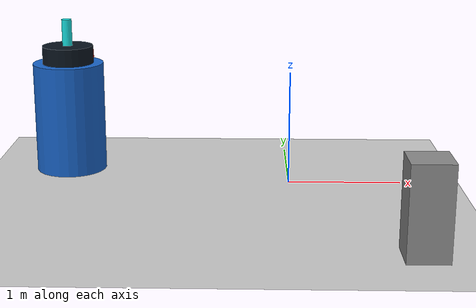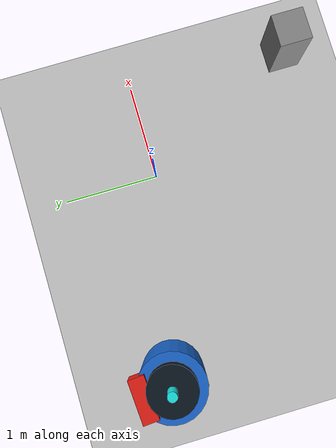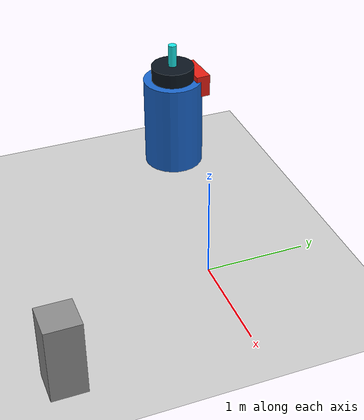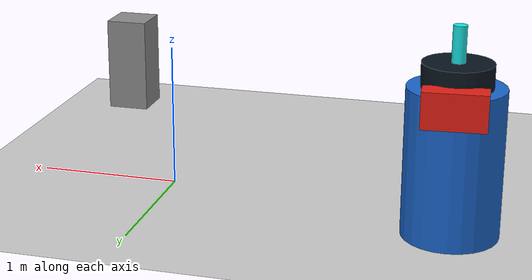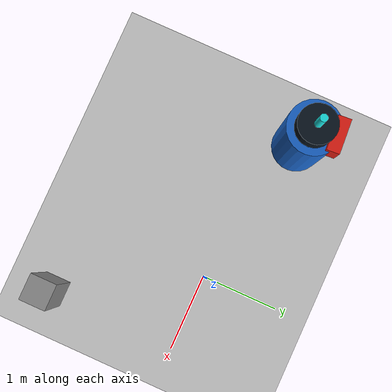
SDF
<sdf version="1.7">
 <world name="default">
  <plugin name="socnav_plugin" filename="libSocNavPlugin.so">
   <robot_name>robot</robot_name>
   <trajectory_file>/home/hunav_gz_classic_ws/SocNav3_trajectories/src6/000003928.json</trajectory_file>
   <human_slots>3</human_slots>
   <goal_angle_mesh>
    <angle_threshold>0.515878295898</angle_threshold>
    <uri>/home/hunav_gz_classic_ws/src/socnav_gazebo_reproducer/meshes/000003928_goal_angle_00.stl</uri>
   </goal_angle_mesh>
  </plugin>
  <light name="sun" type="directional">
   <pose>0 0 10 0 -0 0</pose>
   <diffuse>0.8 0.8 0.8 1</diffuse>
   <specular>0.2 0.2 0.2 1</specular>
   <attenuation>
    <range>1000</range>
    <constant>0.9</constant>
    <linear>0.01</linear>
    <quadratic>0.001</quadratic>
   </attenuation>
   <direction>-0.5 0.1 -0.9</direction>
   <spot><inner_angle>0</inner_angle><outer_angle>0</outer_angle><falloff>0</falloff></spot>
  </light>
  <model name="ground_plane">
   <static>1</static>
   <link name="link">
    <collision name="collision">
     <geometry><plane><normal>0 0 1</normal><size>100 100</size></plane></geometry>
     <surface><friction><ode><mu>100</mu><mu2>50</mu2></ode></friction></surface>
    </collision>
    <visual name="visual">
     <cast_shadows>0</cast_shadows>
     <geometry><plane><normal>0 0 1</normal><size>100 100</size></plane></geometry>
     <material>
      <script><uri>file://media/materials/scripts/kitchen.material</uri><name>Kitchen/CounterTop_H</name></script>
     </material>
    </visual>
   </link>
  </model>
  <gravity>0 0 -9.8</gravity>
  <magnetic_field>6e-06 2.3e-05 -4.2e-05</magnetic_field>
  <atmosphere type="adiabatic"/>
  <physics type="ode">
   <max_step_size>0.001</max_step_size>
   <real_time_factor>1</real_time_factor>
   <real_time_update_rate>1000</real_time_update_rate>
  </physics>
  <scene><ambient>0.4 0.4 0.4 1</ambient><background>0.7 0.7 0.7 1</background><shadows>1</shadows></scene>
  <audio><device>default</device></audio>
  <spherical_coordinates>
   <surface_model>EARTH_WGS84</surface_model>
   <latitude_deg>0</latitude_deg>
   <longitude_deg>0</longitude_deg>
   <elevation>0</elevation>
   <heading_deg>0</heading_deg>
  </spherical_coordinates>
  <model name="robot">
   <pose>-2.019645206970614 0.4042903618374554 0.5 0 0 1.6438472180599213</pose>
   <link name="link">
    <collision name="collision">
     <geometry><cylinder><radius>0.3213177130423557</radius><length>1.0</length></cylinder></geometry>
    </collision>
    <visual name="visual">
     <geometry><cylinder><radius>0.3213177130423557</radius><length>1.0</length></cylinder></geometry>
     <material><ambient>0.1 0.4 0.8 1</ambient><diffuse>0.1 0.4 0.8 1</diffuse></material>
    </visual>
    <visual name="robot_top">
     <pose>0 0 0.58 0 0 0</pose>
     <geometry><cylinder><radius>0.23134875339049607</radius><length>0.16</length></cylinder></geometry>
     <material><ambient>0.04 0.08 0.12 1</ambient><diffuse>0.04 0.08 0.12 1</diffuse></material>
    </visual>
    <visual name="robot_front">
     <pose>0.26990687895557874 0 0.44 0 0 0</pose>
     <geometry><box><size>0.15423250226033072 0.41128667269421526 0.24</size></box></geometry>
     <material><ambient>0.9 0.12 0.08 1</ambient><diffuse>0.9 0.12 0.08 1</diffuse></material>
    </visual>
    <visual name="robot_sensor">
     <pose>0 0 0.78 0 0 0</pose>
     <geometry><cylinder><radius>0.0449844798259298</radius><length>0.24</length></cylinder></geometry>
     <material><ambient>0.1 0.9 0.9 1</ambient><diffuse>0.1 0.9 0.9 1</diffuse></material>
    </visual>
   </link>
  </model>
  <model name="static_object_1">
   <static>true</static>
   <pose>0.9303034360228999 -1.6782528302651578 0.375 0 0 0</pose>
   <link name="link">
    <collision name="collision">
     <geometry><box><size>0.3287018322128247 0.3287018322128247 0.75</size></box></geometry>
    </collision>
    <visual name="visual">
     <geometry><box><size>0.3287018322128247 0.3287018322128247 0.75</size></box></geometry>
     <material><ambient>0.55 0.55 0.55 1</ambient><diffuse>0.55 0.55 0.55 1</diffuse></material>
    </visual>
   </link>
  </model>
  <model name="simple_world_test"><static>1</static></model>
 </world>
</sdf>
